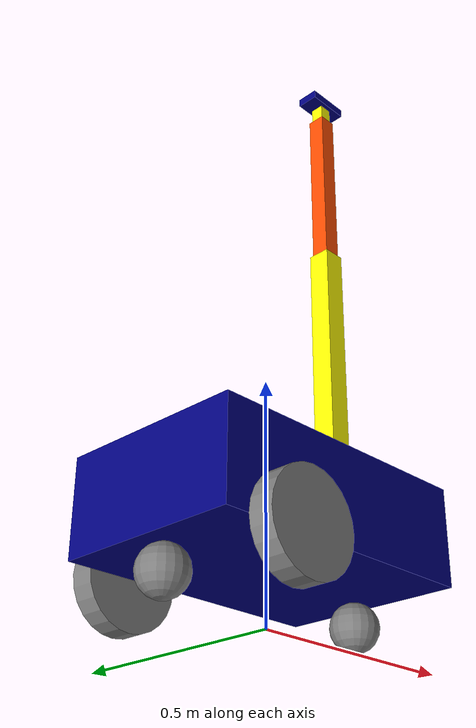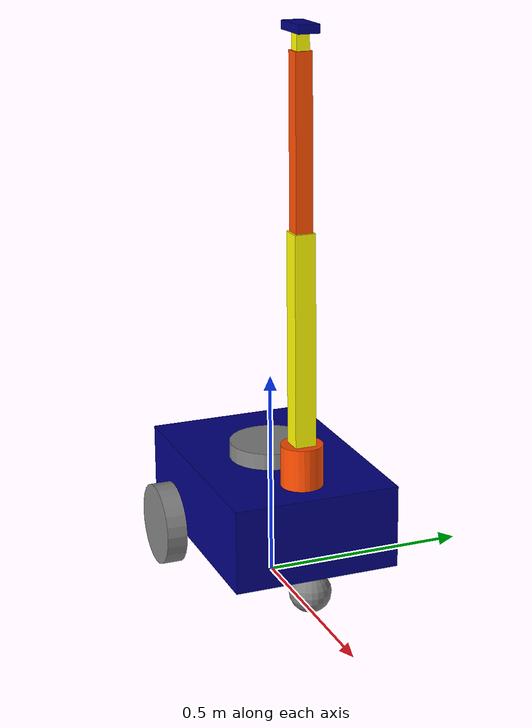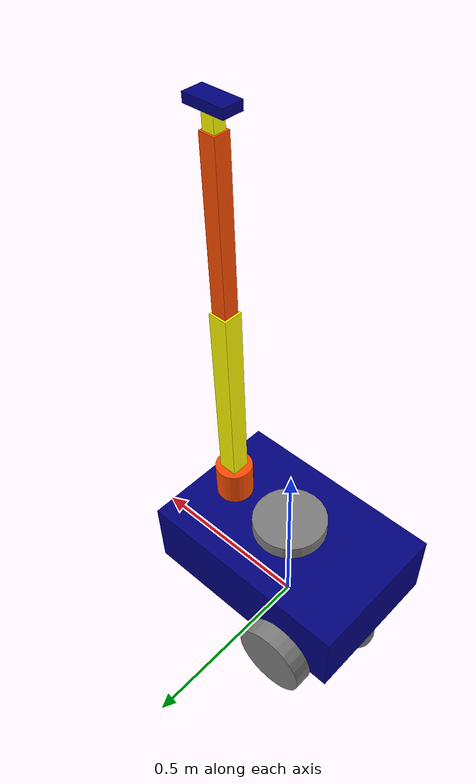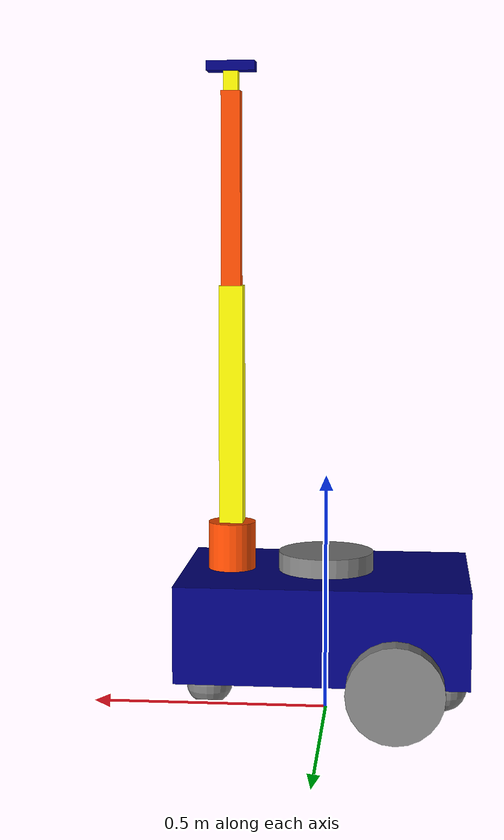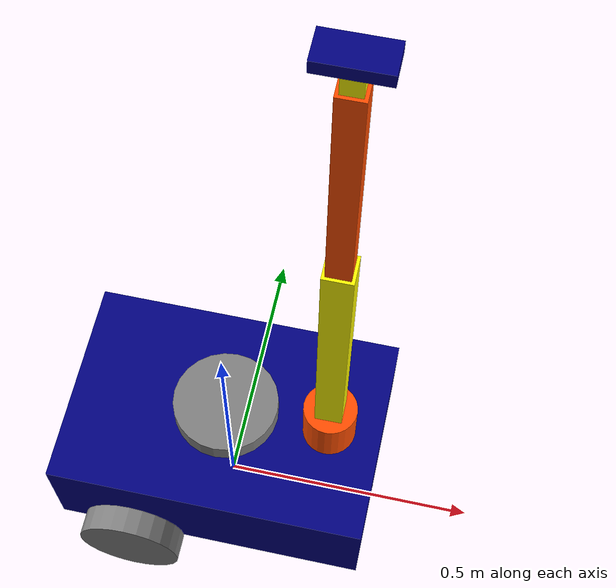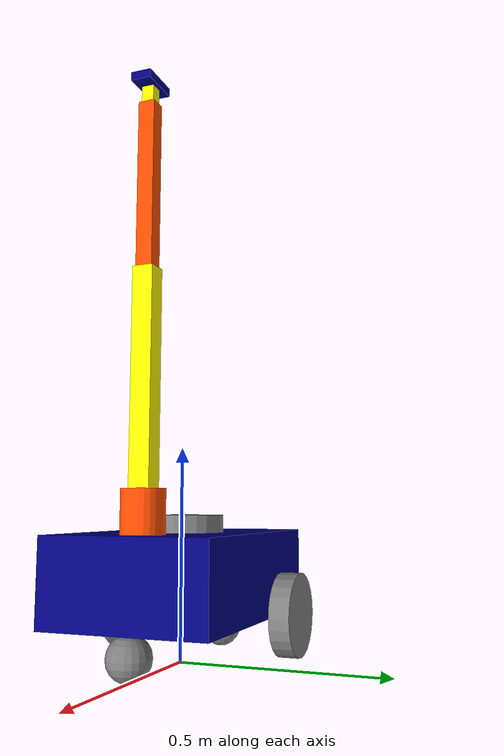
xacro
<?xml version="1.0"?>

<robot name="my_robot" xmlns:xacro="https://wiki.ros.org/xacro">

    <xacro:include filename="./common_properties.xacro" />

    <!-- MOBILE -->
    <xacro:include filename="./mobile/mobile.xacro" />
    <xacro:include filename="./mobile/mobile_gz.xacro" />

    <!-- ARM -->
    <xacro:include filename="./arm/arm.xacro" />
    <xacro:include filename="./arm/arm_gz.xacro" />

    <!-- Connect Arm to Mobile. -->
    <joint name="joint1" type="revolute">
        <parent link="base_link" />
        <child link="link1" />
        <origin xyz="0.2 0 0.2" />
        <axis xyz="0 0 1" />
        <limit lower="-3.14" upper="3.14" effort="100" velocity="1" />
    </joint>

</robot>

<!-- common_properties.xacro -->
<robot xmlns:xacro="http://www.ros.org/wiki/xacro">

    <material name="red">
        <color rgba="0.5 0 0 1" />
    </material>

    <material name="green">
        <color rgba="0 0.5 0 1" />
    </material>

    <material name="blue">
        <color rgba="0 0 0.5 1" />
    </material>

    <material name="pink">
        <color rgba="1 0 0.5 1" />
    </material>

    <material name="grey">
        <color rgba="0.5 0.5 0.5 1" />
    </material>

    <material name="orange">
        <color rgba="1 0.3 0.0 1" />
    </material>

    <material name="yellow">
        <color rgba="1 0.984 0.0 1" />
    </material>

    <xacro:property name="INERTIA_MULTIPLY" value="2" />

    <xacro:macro name="box_inertia" params="m l w h xyz rpy">
        <inertial>
            <origin xyz="${xyz}" rpy="${rpy}" />
            <mass value="${m}" />
            <inertia
                ixx="${(m/12) * (h*h + l*l)}" ixy="0.0" ixz="0.0"
                iyy="${(m/12) * (w*w + l*l)}" iyz="0.0"
                izz="${(m/12) * (w*w + h*h)}" />
        </inertial>
    </xacro:macro>

    <xacro:macro name="sphere_inertia" params="m r xyz rpy">
        <inertial>
            <origin xyz="${xyz}" rpy="${rpy}" />
            <mass value="${m}" />
            <inertia
                ixx="${(2/5) * m * r*r}" ixy="0.0" ixz="0.0"
                iyy="${(2/5) * m * r*r}" iyz="0.0"
                izz="${(2/5) * m * r*r}" />
        </inertial>
    </xacro:macro>

    <xacro:macro name="cylinder_inertia" params="m r h xyz rpy">
        <inertial>
            <origin xyz="${xyz}" rpy="${rpy}" />
            <mass value="${m}" />
            <inertia
                ixx="${(m / 12) * (3 * r*r + h*h)}" ixy="0.0" ixz="0.0"
                iyy="${(m / 12) * (3 * r*r + h*h)}" iyz="0.0"
                izz="${(m / 2) * r*r}" />
        </inertial>
    </xacro:macro>

</robot>

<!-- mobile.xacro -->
<robot name="usenav" xmlns:xacro="http://www.ros.org/wiki/xacro">

  <xacro:property name="BASE_LENGTH" value="0.6" />
  <xacro:property name="BASE_WIDTH" value="0.4" />
  <xacro:property name="BASE_HEIGHT" value="0.2" />

  <xacro:property name="WHEEL_RADIUS" value="0.1" />
  <xacro:property name="WHEEL_LENGTH" value="0.05" />

  <xacro:property name="SCAN_RADIUS" value="0.1" />
  <xacro:property name="SCAN_LENGTH" value="0.04" />

  <xacro:property name="BASE_MASS" value="5.0" />
  <xacro:property name="WHEEL_MASS" value="1.0" />
  <xacro:property name="CASTER_MASS" value="0.5" />
  <xacro:property name="SCAN_MASS" value="0.2" />

  <xacro:macro name="wheel" params="name y_sign">
    <link name="${name}_wheel">
      <visual>
        <geometry>
          <cylinder radius="${WHEEL_RADIUS}" length="${WHEEL_LENGTH}" />
        </geometry>
        <origin xyz="0.0 0.0 0.0" rpy="0.0 0.0 0.0" />
        <material name="grey" />
      </visual>

      <collision>
        <geometry>
          <cylinder radius="${WHEEL_RADIUS}" length="${WHEEL_LENGTH}" />
        </geometry>
        <origin xyz="0.0 0.0 0.0" rpy="0.0 0.0 0.0" />
      </collision>

      <xacro:cylinder_inertia m="${WHEEL_MASS}" r="${INERTIA_MULTIPLY * WHEEL_RADIUS}"
        h="${INERTIA_MULTIPLY * WHEEL_LENGTH}"
        xyz="0.0 0.0 0.0" rpy="0.0 0.0 0.0" />

    </link>

    <joint name="${name}_joint" type="continuous">
      <parent link="base_link" />
      <child link="${name}_wheel" />
      <origin xyz="${-BASE_LENGTH/4} ${y_sign*(BASE_WIDTH + WHEEL_LENGTH) / 2.0} 0.0"
        rpy="${-pi/2.0} 0 0" />
      <axis xyz="0 0 1" />
    </joint>
  </xacro:macro>

  <link name="base_footprint" />

  <link name="base_link">
    <visual>
      <geometry>
        <box size="${BASE_LENGTH} ${BASE_WIDTH} ${BASE_HEIGHT} " />
      </geometry>
      <origin xyz="0 0 ${BASE_HEIGHT/2.0}" rpy="0 0 0" />
      <material name="blue" />
    </visual>

    <collision>
      <geometry>
        <box size="${BASE_LENGTH} ${BASE_WIDTH} ${BASE_HEIGHT} " />
      </geometry>
      <origin xyz="0 0 ${BASE_HEIGHT/2.0}" rpy="0 0 0" />
    </collision>

    <xacro:box_inertia m="${BASE_MASS}" l="${INERTIA_MULTIPLY * BASE_LENGTH}"
      w="${INERTIA_MULTIPLY * BASE_WIDTH}" h="${INERTIA_MULTIPLY * BASE_HEIGHT}"
      xyz="0 0 ${BASE_HEIGHT/2.0}" rpy="0 0 0" />

  </link>

  <joint name="base_joint" type="fixed">
    <parent link="base_footprint" />
    <child link="base_link" />
    <origin xyz="0.0 0.0 ${WHEEL_RADIUS}" rpy="0.0 0.0 0.0" />
    <axis xyz="0.0 1 0.0" rpy="0 0 0"/>
  </joint>

  <link name="base_scan">
    <visual>
      <geometry>
        <cylinder radius="${SCAN_RADIUS}" length="${SCAN_LENGTH}" />
      </geometry>
      <origin xyz="0 0 0" rpy="0 0 0" />
      <material name="grey" />
    </visual>

    <collision>
      <geometry>
        <cylinder radius="${SCAN_RADIUS}" length="${SCAN_LENGTH}" />
      </geometry>
      <origin xyz="0 0 0" rpy="0 0 0" />
    </collision>

    <xacro:cylinder_inertia m="${SCAN_MASS}" r="${INERTIA_MULTIPLY * SCAN_RADIUS}"
        h="${INERTIA_MULTIPLY * SCAN_LENGTH}"
        xyz="0.0 0.0 0.0" rpy="0.0 0.0 0.0" />
  </link>

  <joint name="base_scan_joint" type="fixed">
    <parent link="base_link" />
    <child link="base_scan" />
    <origin xyz="0 0 ${BASE_HEIGHT + SCAN_LENGTH/2.0}" rpy="0 0 0" />
  </joint>

  <xacro:wheel name="left" y_sign="1" />
  <xacro:wheel name="right" y_sign="-1" />

  <link name="caster_front">
    <visual>
      <geometry>
        <sphere radius="${WHEEL_RADIUS / 2.0}" />
      </geometry>
      <origin xyz="0.0 0.0 0" rpy="0.0 0.0 0.0" />
      <material name="grey" />
    </visual>

    <collision>
      <geometry>
        <sphere radius="${WHEEL_RADIUS / 2.0}" />
      </geometry>
      <origin xyz="0.0 0.0 0" rpy="0.0 0.0 0.0" />
    </collision>

    <xacro:sphere_inertia m="${CASTER_MASS}" r="${INERTIA_MULTIPLY * WHEEL_RADIUS / 2.0}"
      xyz="0.0 0.0 0"
      rpy="0.0 0.0 0.0" />

  </link>

  <joint name="caster_front_joint" type="fixed">
    <parent link="base_link" />
    <child link="caster_front" />
    <origin xyz="0.25 0 ${-WHEEL_RADIUS / 2.0}" />
  </joint>

  <link name="caster_rear">
    <visual>
      <geometry>
        <sphere radius="${WHEEL_RADIUS / 2.0}" />
      </geometry>
      <material name="grey" />
    </visual>

    <collision>
      <geometry>
        <sphere radius="${WHEEL_RADIUS / 2.0}" />
      </geometry>
    </collision>

    <xacro:sphere_inertia m="${CASTER_MASS}" r="${INERTIA_MULTIPLY * WHEEL_RADIUS / 2.0}"
      xyz="0.0 0.0 0"
      rpy="0.0 0.0 0.0" />
  </link>

  <joint name="caster_rear_joint" type="fixed">
    <parent link="base_link" />
    <child link="caster_rear" />
    <origin xyz="-0.25 0 ${-WHEEL_RADIUS / 2.0}" />
  </joint>

</robot>

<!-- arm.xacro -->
<robot xmlns:xacro="https://wiki.ros.org/xacro">

    <xacro:property name="LINK1_MASS" value="0.1" />
    <xacro:property name="LINK2_MASS" value="0.1" />
    <xacro:property name="LINK3_MASS" value="0.1" />
    <xacro:property name="LINK4_MASS" value="0.1" />
    <xacro:property name="LINK_EE_MASS" value="0.1" />

    <link name="link1">
        <visual>
            <geometry>
                <cylinder radius="0.05" length="0.2" />
            </geometry>
            <material name="orange" />
        </visual>
        <inertial>
            <mass value="0.1" />
            <inertia ixx="0.001" ixy="0" ixz="0" iyy="0.001" iyz="0" izz="0.001" />
        </inertial>
    </link>

    <link name="link2">
        <visual>
            <origin xyz="0 0 0.25" />
            <geometry>
                <box size="0.05 0.05 0.5" />
            </geometry>
            <material name="yellow" />
        </visual>
        <inertial>
            <mass value="0.1" />
            <inertia ixx="0.001" ixy="0" ixz="0" iyy="0.001" iyz="0" izz="0.001" />
        </inertial>
    </link>

    <joint name="joint2" type="revolute">
        <parent link="link1" />
        <child link="link2" />
        <origin xyz="0 0 0.1" />
        <axis xyz="0 1 0" />
        <limit lower="-1.57" upper="1.57" effort="500" velocity="1" />
    </joint>

    <link name="link3">
        <visual>
            <origin xyz="0 0 0.2" />
            <geometry>
                <box size="0.04 0.04 0.4" />
            </geometry>
            <material name="orange" />
        </visual>
        <inertial>
            <mass value="0.1" />
            <inertia ixx="0.001" ixy="0" ixz="0" iyy="0.001" iyz="0" izz="0.001" />
        </inertial>
    </link>
    <joint name="joint3" type="revolute">
        <parent link="link2" />
        <child link="link3" />
        <origin xyz="0 0 0.5" />
        <axis xyz="0 1 0" />
        <limit lower="-2.5" upper="2.5" effort="200" velocity="1" />
    </joint>

    <link name="link4">
        <visual>
            <geometry>
                <box size="0.03 0.03 0.1" />
            </geometry>
            <material name="yellow" />
        </visual>
        <inertial>
            <mass value="0.01" />
            <inertia ixx="0.0001" ixy="0" ixz="0" iyy="0.0001" iyz="0" izz="0.0001" />
        </inertial>
    </link>
    <joint name="joint4" type="revolute">
        <parent link="link3" />
        <child link="link4" />
        <origin xyz="0 0 0.4" />
        <axis xyz="0 1 0" />
        <limit lower="-1.57" upper="1.57" effort="100" velocity="1" />
    </joint>

    <link name="end_effector">
        <visual>
            <geometry>
                <box size="0.1 0.05 0.02" />
            </geometry>
            <material name="blue" />
        </visual>
        <inertial>
            <mass value="0.01" />
            <inertia ixx="0.0001" ixy="0" ixz="0" iyy="0.0001" iyz="0" izz="0.0001" />
        </inertial>
    </link>
    <joint name="joint5" type="revolute">
        <parent link="link4" />
        <child link="end_effector" />
        <origin xyz="0 0 0.05" />
        <axis xyz="0 0 1" />
        <limit lower="-3.14" upper="3.14" effort="50" velocity="1" />
    </joint>
</robot>
